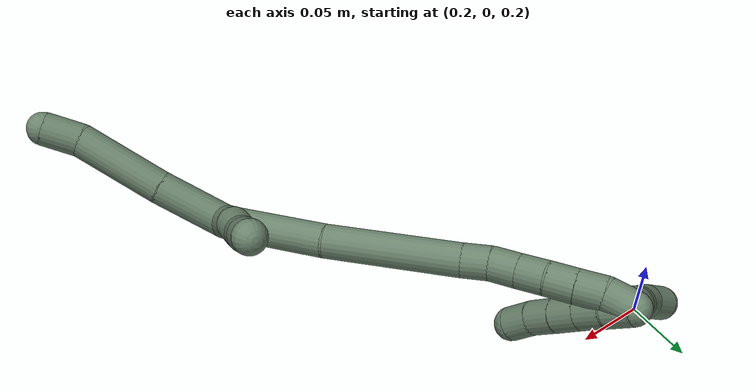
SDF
<sdf version="1.7">
 <world name="default">
  <model name="17">
   <static>0</static>
   <link name="17">
    <collision name="collision-cylinder-e_1_2_8">
     <pose>-0.007114 -0.022317 -0.013698 2.1213 -0.265272 -0.46814</pose>
     <geometry><cylinder><radius>0.0125</radius><length>0.054269</length></cylinder></geometry>
     <surface>
      <friction><ode><mu>1.16</mu><mu2>1.16</mu2><slip1>0</slip1><slip2>0</slip2></ode></friction>
      <contact><ode><kp>1e+06</kp><kd>1</kd><max_vel>0</max_vel><min_depth>0.001</min_depth></ode></contact>
     </surface>
    </collision>
    <visual name="visual-cylinder-e_1_2_8">
     <pose>-0.007114 -0.022317 -0.013698 2.1213 -0.265272 -0.46814</pose>
     <geometry><cylinder><radius>0.0125</radius><length>0.054269</length></cylinder></geometry>
     <material><ambient>0.415686 0.509804 0.423529 1</ambient></material>
    </visual>
    <collision name="collision-cylinder-e_2_8_9">
     <pose>-0.024554 -0.071188 -0.045397 2.16651 -0.311401 -0.575643</pose>
     <geometry><cylinder><radius>0.0125</radius><length>0.067404</length></cylinder></geometry>
     <surface>
      <friction><ode><mu>1.16</mu><mu2>1.16</mu2><slip1>0</slip1><slip2>0</slip2></ode></friction>
      <contact><ode><kp>1e+06</kp><kd>1</kd><max_vel>0</max_vel><min_depth>0.001</min_depth></ode></contact>
     </surface>
    </collision>
    <visual name="visual-cylinder-e_2_8_9">
     <pose>-0.024554 -0.071188 -0.045397 2.16651 -0.311401 -0.575643</pose>
     <geometry><cylinder><radius>0.0125</radius><length>0.067404</length></cylinder></geometry>
     <material><ambient>0.415686 0.509804 0.423529 1</ambient></material>
    </visual>
    <collision name="collision-cylinder-e_3_9_6">
     <pose>-0.036248 -0.110402 -0.069602 2.02656 -0.096763 -0.155006</pose>
     <geometry><cylinder><radius>0.0125</radius><length>0.028327</length></cylinder></geometry>
     <surface>
      <friction><ode><mu>1.16</mu><mu2>1.16</mu2><slip1>0</slip1><slip2>0</slip2></ode></friction>
      <contact><ode><kp>1e+06</kp><kd>1</kd><max_vel>0</max_vel><min_depth>0.001</min_depth></ode></contact>
     </surface>
    </collision>
    <visual name="visual-cylinder-e_3_9_6">
     <pose>-0.036248 -0.110402 -0.069602 2.02656 -0.096763 -0.155006</pose>
     <geometry><cylinder><radius>0.0125</radius><length>0.028327</length></cylinder></geometry>
     <material><ambient>0.415686 0.509804 0.423529 1</ambient></material>
    </visual>
    <collision name="collision-cylinder-e_1_2_10">
     <pose>-0.002464 -0.002506 0.011905 0.20751 -0.199833 -0.020877</pose>
     <geometry><cylinder><radius>0.0125</radius><length>0.024826</length></cylinder></geometry>
     <surface>
      <friction><ode><mu>1.16</mu><mu2>1.16</mu2><slip1>0</slip1><slip2>0</slip2></ode></friction>
      <contact><ode><kp>1e+06</kp><kd>1</kd><max_vel>0</max_vel><min_depth>0.001</min_depth></ode></contact>
     </surface>
    </collision>
    <visual name="visual-cylinder-e_1_2_10">
     <pose>-0.002464 -0.002506 0.011905 0.20751 -0.199833 -0.020877</pose>
     <geometry><cylinder><radius>0.0125</radius><length>0.024826</length></cylinder></geometry>
     <material><ambient>0.415686 0.509804 0.423529 1</ambient></material>
    </visual>
    <collision name="collision-cylinder-e_2_10_11">
     <pose>-0.004654 -0.006809 0.035449 0.153056 0.023253 0.001783</pose>
     <geometry><cylinder><radius>0.0125</radius><length>0.023561</length></cylinder></geometry>
     <surface>
      <friction><ode><mu>1.16</mu><mu2>1.16</mu2><slip1>0</slip1><slip2>0</slip2></ode></friction>
      <contact><ode><kp>1e+06</kp><kd>1</kd><max_vel>0</max_vel><min_depth>0.001</min_depth></ode></contact>
     </surface>
    </collision>
    <visual name="visual-cylinder-e_2_10_11">
     <pose>-0.004654 -0.006809 0.035449 0.153056 0.023253 0.001783</pose>
     <geometry><cylinder><radius>0.0125</radius><length>0.023561</length></cylinder></geometry>
     <material><ambient>0.415686 0.509804 0.423529 1</ambient></material>
    </visual>
    <collision name="collision-cylinder-e_3_11_12">
     <pose>-0.007218 -0.01424 0.061572 0.371114 -0.180615 -0.033994</pose>
     <geometry><cylinder><radius>0.0125</radius><length>0.031596</length></cylinder></geometry>
     <surface>
      <friction><ode><mu>1.16</mu><mu2>1.16</mu2><slip1>0</slip1><slip2>0</slip2></ode></friction>
      <contact><ode><kp>1e+06</kp><kd>1</kd><max_vel>0</max_vel><min_depth>0.001</min_depth></ode></contact>
     </surface>
    </collision>
    <visual name="visual-cylinder-e_3_11_12">
     <pose>-0.007218 -0.01424 0.061572 0.371114 -0.180615 -0.033994</pose>
     <geometry><cylinder><radius>0.0125</radius><length>0.031596</length></cylinder></geometry>
     <material><ambient>0.415686 0.509804 0.423529 1</ambient></material>
    </visual>
    <collision name="collision-cylinder-e_4_12_5">
     <pose>-0.011771 -0.022687 0.085507 0.289084 -0.172172 -0.025122</pose>
     <geometry><cylinder><radius>0.0125</radius><length>0.020017</length></cylinder></geometry>
     <surface>
      <friction><ode><mu>1.16</mu><mu2>1.16</mu2><slip1>0</slip1><slip2>0</slip2></ode></friction>
      <contact><ode><kp>1e+06</kp><kd>1</kd><max_vel>0</max_vel><min_depth>0.001</min_depth></ode></contact>
     </surface>
    </collision>
    <visual name="visual-cylinder-e_4_12_5">
     <pose>-0.011771 -0.022687 0.085507 0.289084 -0.172172 -0.025122</pose>
     <geometry><cylinder><radius>0.0125</radius><length>0.020017</length></cylinder></geometry>
     <material><ambient>0.415686 0.509804 0.423529 1</ambient></material>
    </visual>
    <collision name="collision-cylinder-e_1_2_13">
     <pose>-0.003871 0.025353 0.030356 -0.695836 -0.097551 0.035403</pose>
     <geometry><cylinder><radius>0.0125</radius><length>0.07948</length></cylinder></geometry>
     <surface>
      <friction><ode><mu>1.16</mu><mu2>1.16</mu2><slip1>0</slip1><slip2>0</slip2></ode></friction>
      <contact><ode><kp>1e+06</kp><kd>1</kd><max_vel>0</max_vel><min_depth>0.001</min_depth></ode></contact>
     </surface>
    </collision>
    <visual name="visual-cylinder-e_1_2_13">
     <pose>-0.003871 0.025353 0.030356 -0.695836 -0.097551 0.035403</pose>
     <geometry><cylinder><radius>0.0125</radius><length>0.07948</length></cylinder></geometry>
     <material><ambient>0.415686 0.509804 0.423529 1</ambient></material>
    </visual>
    <collision name="collision-cylinder-e_2_13_14">
     <pose>-0.01386 0.086923 0.094172 -0.82494 -0.123475 0.054085</pose>
     <geometry><cylinder><radius>0.0125</radius><length>0.09937</length></cylinder></geometry>
     <surface>
      <friction><ode><mu>1.16</mu><mu2>1.16</mu2><slip1>0</slip1><slip2>0</slip2></ode></friction>
      <contact><ode><kp>1e+06</kp><kd>1</kd><max_vel>0</max_vel><min_depth>0.001</min_depth></ode></contact>
     </surface>
    </collision>
    <visual name="visual-cylinder-e_2_13_14">
     <pose>-0.01386 0.086923 0.094172 -0.82494 -0.123475 0.054085</pose>
     <geometry><cylinder><radius>0.0125</radius><length>0.09937</length></cylinder></geometry>
     <material><ambient>0.415686 0.509804 0.423529 1</ambient></material>
    </visual>
    <collision name="collision-cylinder-e_3_14_15">
     <pose>-0.021727 0.129868 0.135037 -0.737564 -0.172852 0.066943</pose>
     <geometry><cylinder><radius>0.0125</radius><length>0.020316</length></cylinder></geometry>
     <surface>
      <friction><ode><mu>1.16</mu><mu2>1.16</mu2><slip1>0</slip1><slip2>0</slip2></ode></friction>
      <contact><ode><kp>1e+06</kp><kd>1</kd><max_vel>0</max_vel><min_depth>0.001</min_depth></ode></contact>
     </surface>
    </collision>
    <visual name="visual-cylinder-e_3_14_15">
     <pose>-0.021727 0.129868 0.135037 -0.737564 -0.172852 0.066943</pose>
     <geometry><cylinder><radius>0.0125</radius><length>0.020316</length></cylinder></geometry>
     <material><ambient>0.415686 0.509804 0.423529 1</ambient></material>
    </visual>
    <collision name="collision-cylinder-e_4_15_16">
     <pose>-0.023791 0.142531 0.150762 -0.619593 -0.031021 0.009931</pose>
     <geometry><cylinder><radius>0.0125</radius><length>0.020446</length></cylinder></geometry>
     <surface>
      <friction><ode><mu>1.16</mu><mu2>1.16</mu2><slip1>0</slip1><slip2>0</slip2></ode></friction>
      <contact><ode><kp>1e+06</kp><kd>1</kd><max_vel>0</max_vel><min_depth>0.001</min_depth></ode></contact>
     </surface>
    </collision>
    <visual name="visual-cylinder-e_4_15_16">
     <pose>-0.023791 0.142531 0.150762 -0.619593 -0.031021 0.009931</pose>
     <geometry><cylinder><radius>0.0125</radius><length>0.020446</length></cylinder></geometry>
     <material><ambient>0.415686 0.509804 0.423529 1</ambient></material>
    </visual>
    <collision name="collision-cylinder-e_5_16_17">
     <pose>-0.024728 0.153724 0.167665 -0.549728 -0.061485 0.017344</pose>
     <geometry><cylinder><radius>0.0125</radius><length>0.020174</length></cylinder></geometry>
     <surface>
      <friction><ode><mu>1.16</mu><mu2>1.16</mu2><slip1>0</slip1><slip2>0</slip2></ode></friction>
      <contact><ode><kp>1e+06</kp><kd>1</kd><max_vel>0</max_vel><min_depth>0.001</min_depth></ode></contact>
     </surface>
    </collision>
    <visual name="visual-cylinder-e_5_16_17">
     <pose>-0.024728 0.153724 0.167665 -0.549728 -0.061485 0.017344</pose>
     <geometry><cylinder><radius>0.0125</radius><length>0.020174</length></cylinder></geometry>
     <material><ambient>0.415686 0.509804 0.423529 1</ambient></material>
    </visual>
    <collision name="collision-cylinder-e_6_17_18">
     <pose>-0.025539 0.16523 0.184065 -0.674191 -0.019106 0.006696</pose>
     <geometry><cylinder><radius>0.0125</radius><length>0.020012</length></cylinder></geometry>
     <surface>
      <friction><ode><mu>1.16</mu><mu2>1.16</mu2><slip1>0</slip1><slip2>0</slip2></ode></friction>
      <contact><ode><kp>1e+06</kp><kd>1</kd><max_vel>0</max_vel><min_depth>0.001</min_depth></ode></contact>
     </surface>
    </collision>
    <visual name="visual-cylinder-e_6_17_18">
     <pose>-0.025539 0.16523 0.184065 -0.674191 -0.019106 0.006696</pose>
     <geometry><cylinder><radius>0.0125</radius><length>0.020012</length></cylinder></geometry>
     <material><ambient>0.415686 0.509804 0.423529 1</ambient></material>
    </visual>
    <collision name="collision-cylinder-e_7_18_19">
     <pose>-0.026051 0.177907 0.199605 -0.694306 -0.031939 0.011557</pose>
     <geometry><cylinder><radius>0.0125</radius><length>0.020115</length></cylinder></geometry>
     <surface>
      <friction><ode><mu>1.16</mu><mu2>1.16</mu2><slip1>0</slip1><slip2>0</slip2></ode></friction>
      <contact><ode><kp>1e+06</kp><kd>1</kd><max_vel>0</max_vel><min_depth>0.001</min_depth></ode></contact>
     </surface>
    </collision>
    <visual name="visual-cylinder-e_7_18_19">
     <pose>-0.026051 0.177907 0.199605 -0.694306 -0.031939 0.011557</pose>
     <geometry><cylinder><radius>0.0125</radius><length>0.020115</length></cylinder></geometry>
     <material><ambient>0.415686 0.509804 0.423529 1</ambient></material>
    </visual>
    <collision name="collision-cylinder-e_8_19_1">
     <pose>-0.024439 0.19025 0.215217 -0.643233 0.19368 -0.064711</pose>
     <geometry><cylinder><radius>0.0125</radius><length>0.020089</length></cylinder></geometry>
     <surface>
      <friction><ode><mu>1.16</mu><mu2>1.16</mu2><slip1>0</slip1><slip2>0</slip2></ode></friction>
      <contact><ode><kp>1e+06</kp><kd>1</kd><max_vel>0</max_vel><min_depth>0.001</min_depth></ode></contact>
     </surface>
    </collision>
    <visual name="visual-cylinder-e_8_19_1">
     <pose>-0.024439 0.19025 0.215217 -0.643233 0.19368 -0.064711</pose>
     <geometry><cylinder><radius>0.0125</radius><length>0.020089</length></cylinder></geometry>
     <material><ambient>0.415686 0.509804 0.423529 1</ambient></material>
    </visual>
    <collision name="collision-cylinder-e_1_1_20">
     <pose>-0.021591 0.205888 0.214123 -2.31642 0.069001 -0.157376</pose>
     <geometry><cylinder><radius>0.0125</radius><length>0.026539</length></cylinder></geometry>
     <surface>
      <friction><ode><mu>1.16</mu><mu2>1.16</mu2><slip1>0</slip1><slip2>0</slip2></ode></friction>
      <contact><ode><kp>1e+06</kp><kd>1</kd><max_vel>0</max_vel><min_depth>0.001</min_depth></ode></contact>
     </surface>
    </collision>
    <visual name="visual-cylinder-e_1_1_20">
     <pose>-0.021591 0.205888 0.214123 -2.31642 0.069001 -0.157376</pose>
     <geometry><cylinder><radius>0.0125</radius><length>0.026539</length></cylinder></geometry>
     <material><ambient>0.415686 0.509804 0.423529 1</ambient></material>
    </visual>
    <collision name="collision-cylinder-e_2_20_21">
     <pose>-0.019077 0.224053 0.198458 -2.24057 0.147413 -0.302985</pose>
     <geometry><cylinder><radius>0.0125</radius><length>0.021768</length></cylinder></geometry>
     <surface>
      <friction><ode><mu>1.16</mu><mu2>1.16</mu2><slip1>0</slip1><slip2>0</slip2></ode></friction>
      <contact><ode><kp>1e+06</kp><kd>1</kd><max_vel>0</max_vel><min_depth>0.001</min_depth></ode></contact>
     </surface>
    </collision>
    <visual name="visual-cylinder-e_2_20_21">
     <pose>-0.019077 0.224053 0.198458 -2.24057 0.147413 -0.302985</pose>
     <geometry><cylinder><radius>0.0125</radius><length>0.021768</length></cylinder></geometry>
     <material><ambient>0.415686 0.509804 0.423529 1</ambient></material>
    </visual>
    <collision name="collision-cylinder-e_3_21_22">
     <pose>-0.016477 0.24305 0.184797 -2.15482 0.078991 -0.146705</pose>
     <geometry><cylinder><radius>0.0125</radius><length>0.025387</length></cylinder></geometry>
     <surface>
      <friction><ode><mu>1.16</mu><mu2>1.16</mu2><slip1>0</slip1><slip2>0</slip2></ode></friction>
      <contact><ode><kp>1e+06</kp><kd>1</kd><max_vel>0</max_vel><min_depth>0.001</min_depth></ode></contact>
     </surface>
    </collision>
    <visual name="visual-cylinder-e_3_21_22">
     <pose>-0.016477 0.24305 0.184797 -2.15482 0.078991 -0.146705</pose>
     <geometry><cylinder><radius>0.0125</radius><length>0.025387</length></cylinder></geometry>
     <material><ambient>0.415686 0.509804 0.423529 1</ambient></material>
    </visual>
    <collision name="collision-cylinder-e_4_22_4">
     <pose>-0.014167 0.266053 0.173773 -1.88512 0.099616 -0.137032</pose>
     <geometry><cylinder><radius>0.0125</radius><length>0.026305</length></cylinder></geometry>
     <surface>
      <friction><ode><mu>1.16</mu><mu2>1.16</mu2><slip1>0</slip1><slip2>0</slip2></ode></friction>
      <contact><ode><kp>1e+06</kp><kd>1</kd><max_vel>0</max_vel><min_depth>0.001</min_depth></ode></contact>
     </surface>
    </collision>
    <visual name="visual-cylinder-e_4_22_4">
     <pose>-0.014167 0.266053 0.173773 -1.88512 0.099616 -0.137032</pose>
     <geometry><cylinder><radius>0.0125</radius><length>0.026305</length></cylinder></geometry>
     <material><ambient>0.415686 0.509804 0.423529 1</ambient></material>
    </visual>
    <collision name="collision-cylinder-e_1_1_23">
     <pose>-0.018498 0.192936 0.214528 2.78177 0.41233 1.71001</pose>
     <geometry><cylinder><radius>0.0125</radius><length>0.02</length></cylinder></geometry>
     <surface>
      <friction><ode><mu>1.16</mu><mu2>1.16</mu2><slip1>0</slip1><slip2>0</slip2></ode></friction>
      <contact><ode><kp>1e+06</kp><kd>1</kd><max_vel>0</max_vel><min_depth>0.001</min_depth></ode></contact>
     </surface>
    </collision>
    <visual name="visual-cylinder-e_1_1_23">
     <pose>-0.018498 0.192936 0.214528 2.78177 0.41233 1.71001</pose>
     <geometry><cylinder><radius>0.0125</radius><length>0.02</length></cylinder></geometry>
     <material><ambient>0.415686 0.509804 0.423529 1</ambient></material>
    </visual>
    <collision name="collision-cylinder-e_2_23_24">
     <pose>-0.010487 0.187568 0.197044 2.90568 0.411937 2.10968</pose>
     <geometry><cylinder><radius>0.0125</radius><length>0.02</length></cylinder></geometry>
     <surface>
      <friction><ode><mu>1.16</mu><mu2>1.16</mu2><slip1>0</slip1><slip2>0</slip2></ode></friction>
      <contact><ode><kp>1e+06</kp><kd>1</kd><max_vel>0</max_vel><min_depth>0.001</min_depth></ode></contact>
     </surface>
    </collision>
    <visual name="visual-cylinder-e_2_23_24">
     <pose>-0.010487 0.187568 0.197044 2.90568 0.411937 2.10968</pose>
     <geometry><cylinder><radius>0.0125</radius><length>0.02</length></cylinder></geometry>
     <material><ambient>0.415686 0.509804 0.423529 1</ambient></material>
    </visual>
    <collision name="collision-cylinder-e_3_24_25">
     <pose>-0.00221 0.183227 0.179365 2.89581 0.441489 2.13528</pose>
     <geometry><cylinder><radius>0.0125</radius><length>0.02</length></cylinder></geometry>
     <surface>
      <friction><ode><mu>1.16</mu><mu2>1.16</mu2><slip1>0</slip1><slip2>0</slip2></ode></friction>
      <contact><ode><kp>1e+06</kp><kd>1</kd><max_vel>0</max_vel><min_depth>0.001</min_depth></ode></contact>
     </surface>
    </collision>
    <visual name="visual-cylinder-e_3_24_25">
     <pose>-0.00221 0.183227 0.179365 2.89581 0.441489 2.13528</pose>
     <geometry><cylinder><radius>0.0125</radius><length>0.02</length></cylinder></geometry>
     <material><ambient>0.415686 0.509804 0.423529 1</ambient></material>
    </visual>
    <collision name="collision-cylinder-e_4_25_26">
     <pose>0.006222 0.179047 0.16172 2.92206 0.429004 2.20491</pose>
     <geometry><cylinder><radius>0.0125</radius><length>0.02</length></cylinder></geometry>
     <surface>
      <friction><ode><mu>1.16</mu><mu2>1.16</mu2><slip1>0</slip1><slip2>0</slip2></ode></friction>
      <contact><ode><kp>1e+06</kp><kd>1</kd><max_vel>0</max_vel><min_depth>0.001</min_depth></ode></contact>
     </surface>
    </collision>
    <visual name="visual-cylinder-e_4_25_26">
     <pose>0.006222 0.179047 0.16172 2.92206 0.429004 2.20491</pose>
     <geometry><cylinder><radius>0.0125</radius><length>0.02</length></cylinder></geometry>
     <material><ambient>0.415686 0.509804 0.423529 1</ambient></material>
    </visual>
    <collision name="collision-cylinder-e_5_26_3">
     <pose>0.015691 0.1751 0.144601 2.9074 0.559616 2.36446</pose>
     <geometry><cylinder><radius>0.0125</radius><length>0.02</length></cylinder></geometry>
     <surface>
      <friction><ode><mu>1.16</mu><mu2>1.16</mu2><slip1>0</slip1><slip2>0</slip2></ode></friction>
      <contact><ode><kp>1e+06</kp><kd>1</kd><max_vel>0</max_vel><min_depth>0.001</min_depth></ode></contact>
     </surface>
    </collision>
    <visual name="visual-cylinder-e_5_26_3">
     <pose>0.015691 0.1751 0.144601 2.9074 0.559616 2.36446</pose>
     <geometry><cylinder><radius>0.0125</radius><length>0.02</length></cylinder></geometry>
     <material><ambient>0.415686 0.509804 0.423529 1</ambient></material>
    </visual>
    <collision name="collision-sphere-3">
     <pose>0.020999 0.173133 0.136357 0 -0 0</pose>
     <geometry><sphere><radius>0.0125</radius></sphere></geometry>
     <surface>
      <friction><ode><mu>1.16</mu><mu2>1.16</mu2><slip1>0</slip1><slip2>0</slip2></ode></friction>
      <contact><ode><kp>1e+06</kp><kd>1</kd><max_vel>0</max_vel><min_depth>0.001</min_depth></ode></contact>
     </surface>
    </collision>
    <visual name="visual-sphere-3">
     <pose>0.020999 0.173133 0.136357 0 -0 0</pose>
     <geometry><sphere><radius>0.0125</radius></sphere></geometry>
     <material><ambient>0.415686 0.509804 0.423529 1</ambient></material>
    </visual>
    <collision name="collision-sphere-26">
     <pose>0.010382 0.177066 0.152844 0 -0 0</pose>
     <geometry><sphere><radius>0.0125</radius></sphere></geometry>
     <surface>
      <friction><ode><mu>1.16</mu><mu2>1.16</mu2><slip1>0</slip1><slip2>0</slip2></ode></friction>
      <contact><ode><kp>1e+06</kp><kd>1</kd><max_vel>0</max_vel><min_depth>0.001</min_depth></ode></contact>
     </surface>
    </collision>
    <visual name="visual-sphere-26">
     <pose>0.010382 0.177066 0.152844 0 -0 0</pose>
     <geometry><sphere><radius>0.0125</radius></sphere></geometry>
     <material><ambient>0.415686 0.509804 0.423529 1</ambient></material>
    </visual>
    <collision name="collision-sphere-25">
     <pose>0.002063 0.181027 0.170595 0 -0 0</pose>
     <geometry><sphere><radius>0.0125</radius></sphere></geometry>
     <surface>
      <friction><ode><mu>1.16</mu><mu2>1.16</mu2><slip1>0</slip1><slip2>0</slip2></ode></friction>
      <contact><ode><kp>1e+06</kp><kd>1</kd><max_vel>0</max_vel><min_depth>0.001</min_depth></ode></contact>
     </surface>
    </collision>
    <visual name="visual-sphere-25">
     <pose>0.002063 0.181027 0.170595 0 -0 0</pose>
     <geometry><sphere><radius>0.0125</radius></sphere></geometry>
     <material><ambient>0.415686 0.509804 0.423529 1</ambient></material>
    </visual>
    <collision name="collision-sphere-24">
     <pose>-0.006483 0.185427 0.188134 0 -0 0</pose>
     <geometry><sphere><radius>0.0125</radius></sphere></geometry>
     <surface>
      <friction><ode><mu>1.16</mu><mu2>1.16</mu2><slip1>0</slip1><slip2>0</slip2></ode></friction>
      <contact><ode><kp>1e+06</kp><kd>1</kd><max_vel>0</max_vel><min_depth>0.001</min_depth></ode></contact>
     </surface>
    </collision>
    <visual name="visual-sphere-24">
     <pose>-0.006483 0.185427 0.188134 0 -0 0</pose>
     <geometry><sphere><radius>0.0125</radius></sphere></geometry>
     <material><ambient>0.415686 0.509804 0.423529 1</ambient></material>
    </visual>
    <collision name="collision-sphere-23">
     <pose>-0.014491 0.18971 0.205953 0 -0 0</pose>
     <geometry><sphere><radius>0.0125</radius></sphere></geometry>
     <surface>
      <friction><ode><mu>1.16</mu><mu2>1.16</mu2><slip1>0</slip1><slip2>0</slip2></ode></friction>
      <contact><ode><kp>1e+06</kp><kd>1</kd><max_vel>0</max_vel><min_depth>0.001</min_depth></ode></contact>
     </surface>
    </collision>
    <visual name="visual-sphere-23">
     <pose>-0.014491 0.18971 0.205953 0 -0 0</pose>
     <geometry><sphere><radius>0.0125</radius></sphere></geometry>
     <material><ambient>0.415686 0.509804 0.423529 1</ambient></material>
    </visual>
    <collision name="collision-sphere-4">
     <pose>-0.012859 0.278499 0.169727 0 -0 0</pose>
     <geometry><sphere><radius>0.0125</radius></sphere></geometry>
     <surface>
      <friction><ode><mu>1.16</mu><mu2>1.16</mu2><slip1>0</slip1><slip2>0</slip2></ode></friction>
      <contact><ode><kp>1e+06</kp><kd>1</kd><max_vel>0</max_vel><min_depth>0.001</min_depth></ode></contact>
     </surface>
    </collision>
    <visual name="visual-sphere-4">
     <pose>-0.012859 0.278499 0.169727 0 -0 0</pose>
     <geometry><sphere><radius>0.0125</radius></sphere></geometry>
     <material><ambient>0.415686 0.509804 0.423529 1</ambient></material>
    </visual>
    <collision name="collision-sphere-22">
     <pose>-0.015475 0.253607 0.17782 0 -0 0</pose>
     <geometry><sphere><radius>0.0125</radius></sphere></geometry>
     <surface>
      <friction><ode><mu>1.16</mu><mu2>1.16</mu2><slip1>0</slip1><slip2>0</slip2></ode></friction>
      <contact><ode><kp>1e+06</kp><kd>1</kd><max_vel>0</max_vel><min_depth>0.001</min_depth></ode></contact>
     </surface>
    </collision>
    <visual name="visual-sphere-22">
     <pose>-0.015475 0.253607 0.17782 0 -0 0</pose>
     <geometry><sphere><radius>0.0125</radius></sphere></geometry>
     <material><ambient>0.415686 0.509804 0.423529 1</ambient></material>
    </visual>
    <collision name="collision-sphere-21">
     <pose>-0.017479 0.232494 0.191774 0 -0 0</pose>
     <geometry><sphere><radius>0.0125</radius></sphere></geometry>
     <surface>
      <friction><ode><mu>1.16</mu><mu2>1.16</mu2><slip1>0</slip1><slip2>0</slip2></ode></friction>
      <contact><ode><kp>1e+06</kp><kd>1</kd><max_vel>0</max_vel><min_depth>0.001</min_depth></ode></contact>
     </surface>
    </collision>
    <visual name="visual-sphere-21">
     <pose>-0.017479 0.232494 0.191774 0 -0 0</pose>
     <geometry><sphere><radius>0.0125</radius></sphere></geometry>
     <material><ambient>0.415686 0.509804 0.423529 1</ambient></material>
    </visual>
    <collision name="collision-sphere-20">
     <pose>-0.020676 0.215613 0.205142 0 -0 0</pose>
     <geometry><sphere><radius>0.0125</radius></sphere></geometry>
     <surface>
      <friction><ode><mu>1.16</mu><mu2>1.16</mu2><slip1>0</slip1><slip2>0</slip2></ode></friction>
      <contact><ode><kp>1e+06</kp><kd>1</kd><max_vel>0</max_vel><min_depth>0.001</min_depth></ode></contact>
     </surface>
    </collision>
    <visual name="visual-sphere-20">
     <pose>-0.020676 0.215613 0.205142 0 -0 0</pose>
     <geometry><sphere><radius>0.0125</radius></sphere></geometry>
     <material><ambient>0.415686 0.509804 0.423529 1</ambient></material>
    </visual>
    <collision name="collision-sphere-11">
     <pose>-0.00438 -0.008604 0.047089 0 -0 0</pose>
     <geometry><sphere><radius>0.0125</radius></sphere></geometry>
     <surface>
      <friction><ode><mu>1.16</mu><mu2>1.16</mu2><slip1>0</slip1><slip2>0</slip2></ode></friction>
      <contact><ode><kp>1e+06</kp><kd>1</kd><max_vel>0</max_vel><min_depth>0.001</min_depth></ode></contact>
     </surface>
    </collision>
    <visual name="visual-sphere-11">
     <pose>-0.00438 -0.008604 0.047089 0 -0 0</pose>
     <geometry><sphere><radius>0.0125</radius></sphere></geometry>
     <material><ambient>0.415686 0.509804 0.423529 1</ambient></material>
    </visual>
    <collision name="collision-sphere-10">
     <pose>-0.004928 -0.005013 0.02381 0 -0 0</pose>
     <geometry><sphere><radius>0.0125</radius></sphere></geometry>
     <surface>
      <friction><ode><mu>1.16</mu><mu2>1.16</mu2><slip1>0</slip1><slip2>0</slip2></ode></friction>
      <contact><ode><kp>1e+06</kp><kd>1</kd><max_vel>0</max_vel><min_depth>0.001</min_depth></ode></contact>
     </surface>
    </collision>
    <visual name="visual-sphere-10">
     <pose>-0.004928 -0.005013 0.02381 0 -0 0</pose>
     <geometry><sphere><radius>0.0125</radius></sphere></geometry>
     <material><ambient>0.415686 0.509804 0.423529 1</ambient></material>
    </visual>
    <collision name="collision-sphere-6">
     <pose>-0.037617 -0.12306 -0.075807 0 -0 0</pose>
     <geometry><sphere><radius>0.0125</radius></sphere></geometry>
     <surface>
      <friction><ode><mu>1.16</mu><mu2>1.16</mu2><slip1>0</slip1><slip2>0</slip2></ode></friction>
      <contact><ode><kp>1e+06</kp><kd>1</kd><max_vel>0</max_vel><min_depth>0.001</min_depth></ode></contact>
     </surface>
    </collision>
    <visual name="visual-sphere-6">
     <pose>-0.037617 -0.12306 -0.075807 0 -0 0</pose>
     <geometry><sphere><radius>0.0125</radius></sphere></geometry>
     <material><ambient>0.415686 0.509804 0.423529 1</ambient></material>
    </visual>
    <collision name="collision-sphere-9">
     <pose>-0.03488 -0.097744 -0.063397 0 -0 0</pose>
     <geometry><sphere><radius>0.0125</radius></sphere></geometry>
     <surface>
      <friction><ode><mu>1.16</mu><mu2>1.16</mu2><slip1>0</slip1><slip2>0</slip2></ode></friction>
      <contact><ode><kp>1e+06</kp><kd>1</kd><max_vel>0</max_vel><min_depth>0.001</min_depth></ode></contact>
     </surface>
    </collision>
    <visual name="visual-sphere-9">
     <pose>-0.03488 -0.097744 -0.063397 0 -0 0</pose>
     <geometry><sphere><radius>0.0125</radius></sphere></geometry>
     <material><ambient>0.415686 0.509804 0.423529 1</ambient></material>
    </visual>
    <collision name="collision-sphere-2">
     <geometry><sphere><radius>0.0125</radius></sphere></geometry>
     <surface>
      <friction><ode><mu>1.16</mu><mu2>1.16</mu2><slip1>0</slip1><slip2>0</slip2></ode></friction>
      <contact><ode><kp>1e+06</kp><kd>1</kd><max_vel>0</max_vel><min_depth>0.001</min_depth></ode></contact>
     </surface>
    </collision>
    <visual name="visual-sphere-2">
     <geometry><sphere><radius>0.0125</radius></sphere></geometry>
     <material><ambient>0.415686 0.509804 0.423529 1</ambient></material>
    </visual>
    <collision name="collision-sphere-19">
     <pose>-0.026372 0.184339 0.20733 0 -0 0</pose>
     <geometry><sphere><radius>0.0125</radius></sphere></geometry>
     <surface>
      <friction><ode><mu>1.16</mu><mu2>1.16</mu2><slip1>0</slip1><slip2>0</slip2></ode></friction>
      <contact><ode><kp>1e+06</kp><kd>1</kd><max_vel>0</max_vel><min_depth>0.001</min_depth></ode></contact>
     </surface>
    </collision>
    <visual name="visual-sphere-19">
     <pose>-0.026372 0.184339 0.20733 0 -0 0</pose>
     <geometry><sphere><radius>0.0125</radius></sphere></geometry>
     <material><ambient>0.415686 0.509804 0.423529 1</ambient></material>
    </visual>
    <collision name="collision-sphere-8">
     <pose>-0.014228 -0.044633 -0.027396 0 -0 0</pose>
     <geometry><sphere><radius>0.0125</radius></sphere></geometry>
     <surface>
      <friction><ode><mu>1.16</mu><mu2>1.16</mu2><slip1>0</slip1><slip2>0</slip2></ode></friction>
      <contact><ode><kp>1e+06</kp><kd>1</kd><max_vel>0</max_vel><min_depth>0.001</min_depth></ode></contact>
     </surface>
    </collision>
    <visual name="visual-sphere-8">
     <pose>-0.014228 -0.044633 -0.027396 0 -0 0</pose>
     <geometry><sphere><radius>0.0125</radius></sphere></geometry>
     <material><ambient>0.415686 0.509804 0.423529 1</ambient></material>
    </visual>
    <collision name="collision-sphere-12">
     <pose>-0.010056 -0.019876 0.076055 0 -0 0</pose>
     <geometry><sphere><radius>0.0125</radius></sphere></geometry>
     <surface>
      <friction><ode><mu>1.16</mu><mu2>1.16</mu2><slip1>0</slip1><slip2>0</slip2></ode></friction>
      <contact><ode><kp>1e+06</kp><kd>1</kd><max_vel>0</max_vel><min_depth>0.001</min_depth></ode></contact>
     </surface>
    </collision>
    <visual name="visual-sphere-12">
     <pose>-0.010056 -0.019876 0.076055 0 -0 0</pose>
     <geometry><sphere><radius>0.0125</radius></sphere></geometry>
     <material><ambient>0.415686 0.509804 0.423529 1</ambient></material>
    </visual>
    <collision name="collision-sphere-5">
     <pose>-0.013485 -0.025498 0.094958 0 -0 0</pose>
     <geometry><sphere><radius>0.0125</radius></sphere></geometry>
     <surface>
      <friction><ode><mu>1.16</mu><mu2>1.16</mu2><slip1>0</slip1><slip2>0</slip2></ode></friction>
      <contact><ode><kp>1e+06</kp><kd>1</kd><max_vel>0</max_vel><min_depth>0.001</min_depth></ode></contact>
     </surface>
    </collision>
    <visual name="visual-sphere-5">
     <pose>-0.013485 -0.025498 0.094958 0 -0 0</pose>
     <geometry><sphere><radius>0.0125</radius></sphere></geometry>
     <material><ambient>0.415686 0.509804 0.423529 1</ambient></material>
    </visual>
    <collision name="collision-sphere-13">
     <pose>-0.007741 0.050707 0.060712 0 -0 0</pose>
     <geometry><sphere><radius>0.0125</radius></sphere></geometry>
     <surface>
      <friction><ode><mu>1.16</mu><mu2>1.16</mu2><slip1>0</slip1><slip2>0</slip2></ode></friction>
      <contact><ode><kp>1e+06</kp><kd>1</kd><max_vel>0</max_vel><min_depth>0.001</min_depth></ode></contact>
     </surface>
    </collision>
    <visual name="visual-sphere-13">
     <pose>-0.007741 0.050707 0.060712 0 -0 0</pose>
     <geometry><sphere><radius>0.0125</radius></sphere></geometry>
     <material><ambient>0.415686 0.509804 0.423529 1</ambient></material>
    </visual>
    <collision name="collision-sphere-14">
     <pose>-0.01998 0.123139 0.127631 0 -0 0</pose>
     <geometry><sphere><radius>0.0125</radius></sphere></geometry>
     <surface>
      <friction><ode><mu>1.16</mu><mu2>1.16</mu2><slip1>0</slip1><slip2>0</slip2></ode></friction>
      <contact><ode><kp>1e+06</kp><kd>1</kd><max_vel>0</max_vel><min_depth>0.001</min_depth></ode></contact>
     </surface>
    </collision>
    <visual name="visual-sphere-14">
     <pose>-0.01998 0.123139 0.127631 0 -0 0</pose>
     <geometry><sphere><radius>0.0125</radius></sphere></geometry>
     <material><ambient>0.415686 0.509804 0.423529 1</ambient></material>
    </visual>
    <collision name="collision-sphere-15">
     <pose>-0.023474 0.136597 0.142443 0 -0 0</pose>
     <geometry><sphere><radius>0.0125</radius></sphere></geometry>
     <surface>
      <friction><ode><mu>1.16</mu><mu2>1.16</mu2><slip1>0</slip1><slip2>0</slip2></ode></friction>
      <contact><ode><kp>1e+06</kp><kd>1</kd><max_vel>0</max_vel><min_depth>0.001</min_depth></ode></contact>
     </surface>
    </collision>
    <visual name="visual-sphere-15">
     <pose>-0.023474 0.136597 0.142443 0 -0 0</pose>
     <geometry><sphere><radius>0.0125</radius></sphere></geometry>
     <material><ambient>0.415686 0.509804 0.423529 1</ambient></material>
    </visual>
    <collision name="collision-sphere-16">
     <pose>-0.024108 0.148465 0.15908 0 -0 0</pose>
     <geometry><sphere><radius>0.0125</radius></sphere></geometry>
     <surface>
      <friction><ode><mu>1.16</mu><mu2>1.16</mu2><slip1>0</slip1><slip2>0</slip2></ode></friction>
      <contact><ode><kp>1e+06</kp><kd>1</kd><max_vel>0</max_vel><min_depth>0.001</min_depth></ode></contact>
     </surface>
    </collision>
    <visual name="visual-sphere-16">
     <pose>-0.024108 0.148465 0.15908 0 -0 0</pose>
     <geometry><sphere><radius>0.0125</radius></sphere></geometry>
     <material><ambient>0.415686 0.509804 0.423529 1</ambient></material>
    </visual>
    <collision name="collision-sphere-17">
     <pose>-0.025347 0.158984 0.176249 0 -0 0</pose>
     <geometry><sphere><radius>0.0125</radius></sphere></geometry>
     <surface>
      <friction><ode><mu>1.16</mu><mu2>1.16</mu2><slip1>0</slip1><slip2>0</slip2></ode></friction>
      <contact><ode><kp>1e+06</kp><kd>1</kd><max_vel>0</max_vel><min_depth>0.001</min_depth></ode></contact>
     </surface>
    </collision>
    <visual name="visual-sphere-17">
     <pose>-0.025347 0.158984 0.176249 0 -0 0</pose>
     <geometry><sphere><radius>0.0125</radius></sphere></geometry>
     <material><ambient>0.415686 0.509804 0.423529 1</ambient></material>
    </visual>
    <collision name="collision-sphere-18">
     <pose>-0.02573 0.171475 0.19188 0 -0 0</pose>
     <geometry><sphere><radius>0.0125</radius></sphere></geometry>
     <surface>
      <friction><ode><mu>1.16</mu><mu2>1.16</mu2><slip1>0</slip1><slip2>0</slip2></ode></friction>
      <contact><ode><kp>1e+06</kp><kd>1</kd><max_vel>0</max_vel><min_depth>0.001</min_depth></ode></contact>
     </surface>
    </collision>
    <visual name="visual-sphere-18">
     <pose>-0.02573 0.171475 0.19188 0 -0 0</pose>
     <geometry><sphere><radius>0.0125</radius></sphere></geometry>
     <material><ambient>0.415686 0.509804 0.423529 1</ambient></material>
    </visual>
    <collision name="collision-sphere-1">
     <pose>-0.022506 0.196162 0.223104 0 -0 0</pose>
     <geometry><sphere><radius>0.0125</radius></sphere></geometry>
     <surface>
      <friction><ode><mu>1.16</mu><mu2>1.16</mu2><slip1>0</slip1><slip2>0</slip2></ode></friction>
      <contact><ode><kp>1e+06</kp><kd>1</kd><max_vel>0</max_vel><min_depth>0.001</min_depth></ode></contact>
     </surface>
    </collision>
    <visual name="visual-sphere-1">
     <pose>-0.022506 0.196162 0.223104 0 -0 0</pose>
     <geometry><sphere><radius>0.0125</radius></sphere></geometry>
     <material><ambient>0.415686 0.509804 0.423529 1</ambient></material>
    </visual>
    <inertial>
     <pose>-0.01374 0.082157 0.092299 0 -0 0</pose>
     <mass>0.75</mass>
     <inertia>
      <ixx>0.000179</ixx>
      <ixy>0</ixy>
      <ixz>0</ixz>
      <iyy>8.9e-05</iyy>
      <iyz>0</iyz>
      <izz>-2.9e-05</izz>
     </inertia>
    </inertial>
   </link>
   <pose>0.433689 -0.202852 0.26434 -0.797999 0.89753 0.599573</pose>
  </model>
 </world>
</sdf>
